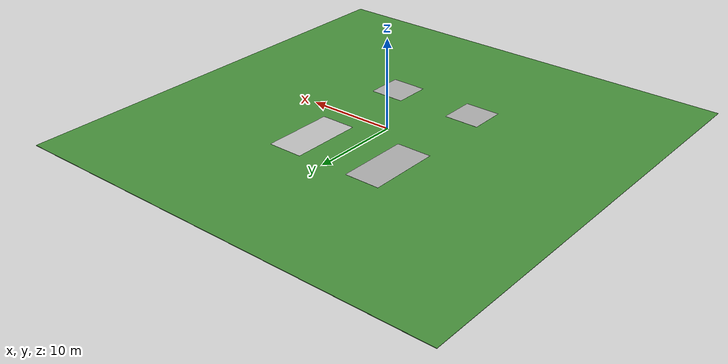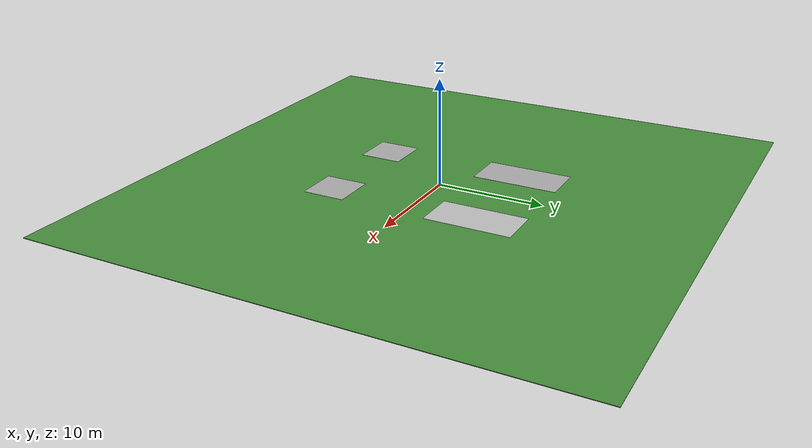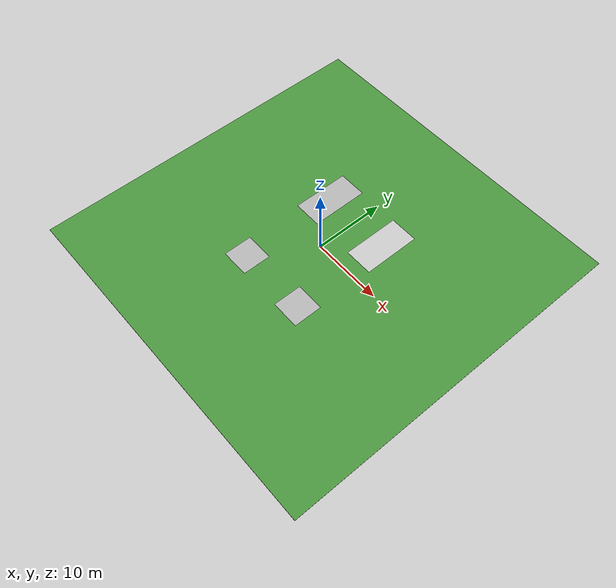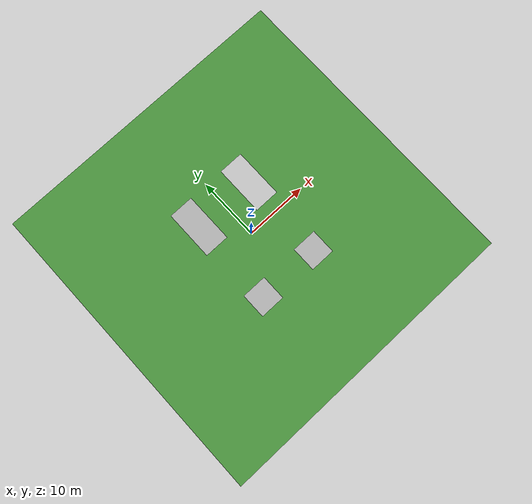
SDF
<sdf version="1.5">
 <world name="default">
  <include><uri>model://sun</uri></include>
  <include><pose>5 -8 0.001 0 0 1.57</pose><uri>model://logoETSIT</uri></include>
  <include><pose>5 6 0.001 0 0 1.57</pose><uri>model://logoGMV</uri></include>
  <include><pose>-5 -8 0.001 0 0 1.57</pose><uri>model://logoJdeRobot</uri></include>
  <include><pose>-5 6 0.001 0 0 1.57</pose><uri>model://logoURJC</uri></include>
  <include><uri>model://grass_plane</uri></include>
  <scene><sky><clouds><speed>12</speed></clouds></sky></scene>
 </world>
</sdf>

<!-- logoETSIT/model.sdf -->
<sdf version='1.4'>
  <model name='logoETSIT'>
    <static>true</static>
    <link name='link'>
      <collision name='collision'>
        <geometry>
          <plane>
            <normal>0 0 1</normal>
            <size>1 1</size>
         </plane>
       </geometry>
        <surface>
          <friction>
            <ode>
              <mu>0.5</mu>
              <mu2>.5</mu2>
           </ode>
         </friction>
       </surface>
     </collision>

      <visual name='visual_0'>
        <pose>0 0 0.1 0 0 0</pose>

        <cast_shadows>false</cast_shadows>
        <geometry>
          <plane>
            <normal>0 0 1</normal>
            <size>4 4</size>
         </plane>
       </geometry>
        <material>
          <script>
            <uri>model://logoETSIT/materials/scripts</uri>
            <uri>model://logoETSIT/materials/textures</uri>
            <name>vrc/logoETSIT</name>
         </script>
       </material>
     </visual>
   </link>
 </model>
</sdf>

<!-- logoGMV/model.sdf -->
<sdf version='1.4'>
  <model name='logoGMV'>
    <static>true</static>
    <link name='link'>
      <collision name='collision'>
        <geometry>
          <plane>
            <normal>0 0 1</normal>
            <size>1 1</size>
         </plane>
       </geometry>
        <surface>
          <friction>
            <ode>
              <mu>0.5</mu>
              <mu2>.5</mu2>
           </ode>
         </friction>
       </surface>
     </collision>

      <visual name='visual_0'>
        <pose>0 0 0.1 0 0 0</pose>

        <cast_shadows>false</cast_shadows>
        <geometry>
          <plane>
            <normal>0 0 1</normal>
            <size>8 4</size>
         </plane>
       </geometry>
        <material>
          <script>
            <uri>model://logoGMV/materials/scripts</uri>
            <uri>model://logoGMV/materials/textures</uri>
            <name>vrc/logoGMV</name>
         </script>
       </material>
     </visual>
   </link>
 </model>
</sdf>

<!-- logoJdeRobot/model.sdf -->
<sdf version='1.4'>
  <model name='logoJdeRobot'>
    <static>true</static>
    <link name='link'>
      <collision name='collision'>
        <geometry>
          <plane>
            <normal>0 0 1</normal>
            <size>1 1</size>
         </plane>
       </geometry>
        <surface>
          <friction>
            <ode>
              <mu>0.5</mu>
              <mu2>.5</mu2>
           </ode>
         </friction>
       </surface>
     </collision>

      <visual name='visual_0'>
        <pose>0 0 0.1 0 0 0</pose>

        <cast_shadows>false</cast_shadows>
        <geometry>
          <plane>
            <normal>0 0 1</normal>
            <size>4 4</size>
         </plane>
       </geometry>
        <material>
          <script>
            <uri>model://logoJdeRobot/materials/scripts</uri>
            <uri>model://logoJdeRobot/materials/textures</uri>
            <name>vrc/logoJdeRobot</name>
         </script>
       </material>
     </visual>
   </link>
 </model>
</sdf>

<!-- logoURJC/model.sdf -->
<sdf version='1.4'>
  <model name='logoURJC'>
    <static>true</static>
    <link name='link'>
      <collision name='collision'>
        <geometry>
          <plane>
            <normal>0 0 1</normal>
            <size>1 1</size>
         </plane>
       </geometry>
        <surface>
          <friction>
            <ode>
              <mu>0.5</mu>
              <mu2>.5</mu2>
           </ode>
         </friction>
       </surface>
     </collision>

      <visual name='visual_0'>
        <pose>0 0 0.1 0 0 0</pose>

        <cast_shadows>false</cast_shadows>
        <geometry>
          <plane>
            <normal>0 0 1</normal>
            <size>8 4</size>
         </plane>
       </geometry>
        <material>
          <script>
            <uri>model://logoURJC/materials/scripts</uri>
            <uri>model://logoURJC/materials/textures</uri>
            <name>vrc/logoURJC</name>
         </script>
       </material>
     </visual>
   </link>
 </model>
</sdf>

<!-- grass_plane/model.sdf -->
<sdf version='1.4'>
  <model name='grass_plane'>
    <static>true</static>
    <link name='link'>
      <collision name='collision'>
        <geometry>
          <plane>
            <normal>0 0 1</normal>
            <size>500 500</size>
        </plane>
      </geometry>
        <surface>
          <friction>
            <ode>
              <mu>0.5</mu>
              <mu2>.5</mu2>
          </ode>
        </friction>
      </surface>
    </collision>

      <visual name='visual_0'>
        <pose>0 0 0 0 0 0</pose>

        <cast_shadows>false</cast_shadows>
        <geometry>
          <plane>
            <normal>0 0 1</normal>
            <size>50 50</size>
        </plane>
      </geometry>
        <material>
          <script>
            <uri>model://grass_plane/materials/scripts</uri>
            <uri>model://grass_plane/materials/textures</uri>
            <name>vrc/grass</name>
        </script>
      </material>
    </visual>
  </link>
</model>
</sdf>
